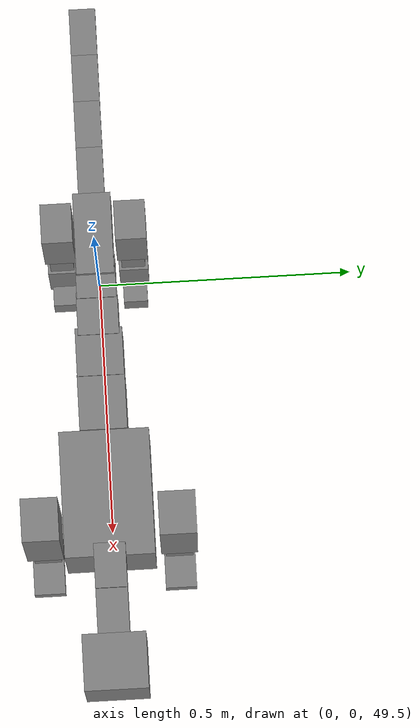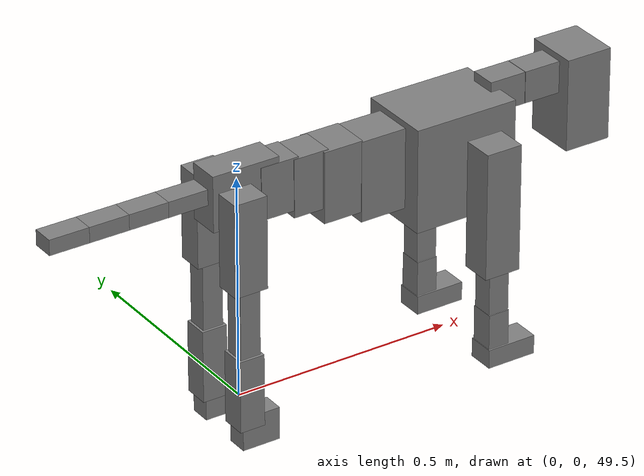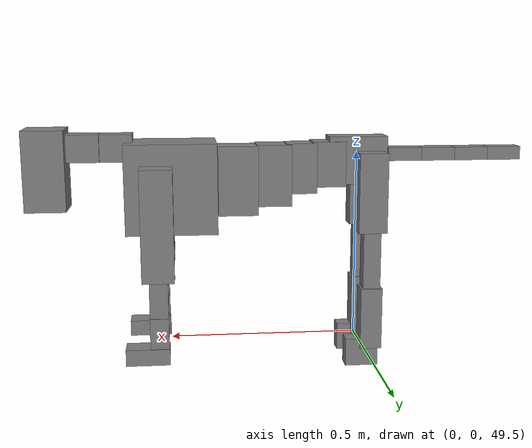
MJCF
<mujoco model="dog">

    <default>
        <joint armature="0.02" stiffness="1" damping="0.2" limited="true"/>
        <geom condim="3" friction="1 0.05 0.05" margin="0.01"/>
        <motor ctrllimited="true" ctrlrange="-1.0 1.0" forcelimited="true" gear="50"/>
    </default>

    <compiler inertiafromgeom="true" angle="radian"/>

    <option timestep="0.016" iterations="50" tolerance="1e-10" solver="Newton" jacobian="dense" cone="pyramidal"/>

    <size nconmax="20000" njmax="60000" nstack="5000000"/>
    <visual>
        <map force="0.1" zfar="30"/>
        <rgba haze="0.15 0.25 0.35 1"/>
        <quality shadowsize="2048"/>
        <global offwidth="800" offheight="800"/>
    </visual>

    <asset>
        <texture type="skybox" builtin="gradient" rgb1="0.3 0.5 0.7" rgb2="0 0 0" width="512" height="512"/>
        <texture name="texplane" type="2d" builtin="checker" rgb1=".2 .3 .4" rgb2=".1 0.15 0.2" width="512" height="512"
                 mark="cross" markrgb=".8 .8 .8"/>
        <texture name="texgeom" type="cube" builtin="flat" mark="cross" width="127" height="1278" rgb1="0.8 0.6 0.4"
                 rgb2="0.8 0.6 0.4" markrgb="1 1 1" random="0.01"/>

        <material name="matplane" reflectance="0.3" texture="texplane" texrepeat="1 1" texuniform="true"/>
        <material name="matgeom" texture="texgeom" texuniform="true" rgba="0.8 0.6 .4 1"/>
    </asset>

    <worldbody>
        <geom name="floor" pos="0 0 0" size="0 0 .25" type="plane" material="matplane" condim="3"/>

        <light directional="false" diffuse=".2 .2 .2" specular="0 0 0" pos="0 0 5" dir="0 0 -1" castshadow="false"/>
        <light mode="targetbodycom" target="torso" directional="false" diffuse=".8 .8 .8" specular="0.3 0.3 0.3"
               pos="0 0 4.0" dir="0 0 -1"/>

        <body name="root" pos="0 0 50">
            <freejoint name="root_1"/>
            <geom type="box" pos="0 0 -0.02" size="0.0774  0.0358  0.063" density="2030"/>

            <body name="spine1" pos="0.054 0 0">
                <joint name="spine1_y" axis="0 1 0" range="0 0.7" limited="true"/>
                <geom type="box" pos="0.02375 0 -0.03" size="0.04375  0.0375  0.05985" density="2030"/>

                <body name="spine2" pos="0.0612 0 0">
                    <joint name="spine2_y" axis="0 1 0" range="-0.15 0.15" limited="true"/>
                    <geom type="box" pos="0.03555  0  -0.04" size="0.04055  0.039  0.06615" density="2030"/>

                    <body name="spine3" pos="0.0730 0 0">
                        <joint name="spine3_y" axis="0 1 0" range="-0.15 0.15" limited="true"/>
                        <geom type="box" pos="0.03555  0  -0.057" size="0.04555  0.0445  0.081" density="2030"/>

                        <body name="spine4" pos="0.0780 0 0">
                            <joint name="spine4_y" axis="0 1 0" range="-0.15 0.15" limited="true"/>
                            <geom type="box" pos="0.05265  0  -0.07" size="0.05265  0.045  0.09135" density="2030"/>

                            <body name="torso" pos="0.1082 0 0">
                                <joint name="torso_y" axis="0 1 0" range="-0.15 0.15" limited="true"/>
                                <geom type="box" pos="0.11925  0  -0.085" size="0.11925  0.085  0.11745"
                                      density="2030"/>

                                <body name="neck1" pos="0.2160  0   0.0180">
                                    <joint name="neck1_y" axis="0 1 0" range="-1.2  -1" limited="true"/>
                                    <geom type="box" pos="0.0423  0  0" size="0.0423  0.03  0.036" density="2325"/>

                                    <body name="neck2" pos="0.0853  0  0">
                                        <joint name="neck2_y" axis="0 1 0" range="0.1  0" limited="true"/>
                                        <geom type="box" pos="0.0423  0  0" size="0.0423  0.03  0.036" density="2325"/>

                                        <body name="head" pos="0.0853  0  0">
                                            <joint name="head_y" axis="0 1 0" range="-0.3  -0.2" limited="true"/>
                                            <geom type="box" pos="0.0531  0  -0.055" size="0.0531  0.06  0.1044"
                                                  density="4030"/>

                                        </body>
                                    </body>
                                </body>

                                <body name="front_shoulder" pos="0.156  0   -0.0480">
                                    <joint name="front_shoulder_y" axis="0 1 0" range="-1 1.5" limited="true"/>
                                    <geom type="box" pos="0 0.13 -0.1175" size="0.0414  0.0354  0.1441" density="1158"/>
                                    <geom type="box" pos="0 -0.13 -0.1175" size="0.0414  0.0354  0.1441"
                                          density="1158"/>

                                    <body name="front_elbow" pos="0  0  -0.2350">
                                        <joint name="front_elbow_y" axis="0 1 0" range="-2 0" limited="true"/>
                                        <geom type="box" pos="0 0.13 -0.0668" size="0.0237  0.0242  0.0668"
                                              density="1081"/>
                                        <geom type="box" pos="0 -0.13 -0.0668" size="0.0237  0.0242  0.0668"
                                              density="1081"/>

                                        <body name="front_wrist" pos="0  0  -0.1337">
                                            <joint name="front_wrist_y" axis="0 1 0" range="-0.2 0" limited="true"/>
                                            <geom type="box" pos="0 0.13 -0.0407" size="0.0241  0.0268  0.0539"
                                                  density="1664"/>
                                            <geom type="box" pos="0 -0.13 -0.0407" size="0.0241  0.0268  0.0539"
                                                  density="1664"/>

                                            <body name="front_finger_end" pos="0  0  -0.0815">
                                                <joint name="front_finger_y" axis="0 1 0" range="-0.4 1"
                                                       limited="true"/>
                                                <geom type="box" pos="0.0307  0.13  -0.0063"
                                                      size="0.0563  0.0307  0.0213" density="1515"/>
                                                <geom type="box" pos="0.0307  -0.13  -0.0063"
                                                      size="0.0563  0.0307  0.0213" density="1515"/>

                                            </body>

                                        </body>
                                    </body>
                                </body>

                            </body>
                        </body>
                    </body>
                </body>
            </body>

            <body name="back_hip" pos="-0.03 0 -0.018">
                <joint name="back_hip_y" axis="0 1 0" range="-1.5 0.3" limited="true"/>
                <geom type="box" pos="0 0.07 -0.0822" size="0.0377  0.0296  0.1050" density="1154"/>
                <geom type="box" pos="0 -0.07 -0.0822" size="0.0377  0.0296  0.1050" density="1154"/>

                <body name="back_knee" pos="0  0  -0.1645">
                    <joint name="back_knee_y" axis="0 1 0" range="0 2.8" limited="true"/>
                    <geom type="box" pos="0 0.07 -0.0920" size="0.0233  0.0230  0.1075" density="1227"/>
                    <geom type="box" pos="0 -0.07 -0.0920" size="0.0233  0.0230  0.1075" density="1227"/>

                    <body name="back_ankle" pos="0  0  -0.1840">
                        <joint name="back_ankle_y" axis="0 1 0" range="-2.2 0" limited="true"/>
                        <geom type="box" pos="0 0.07 -0.0712" size="0.0287  0.0287  0.0824" density="1284"/>
                        <geom type="box" pos="0 -0.07 -0.0712" size="0.0287  0.0287  0.0824" density="1284"/>

                        <body name="back_toe_end" pos="0  0  -0.1423">
                            <joint name="back_toe_y" axis="0 1 0" range="-0.4 1" limited="true"/>
                            <geom type="box" pos="0.0237  0.07  -0.0220" size="0.0434  0.0237  0.0370" density="1515"/>
                            <geom type="box" pos="0.0237  -0.07  -0.0220" size="0.0434  0.0237  0.0370" density="1515"/>

                        </body>
                    </body>
                </body>
            </body>

            <body name="tail1" pos="-0.074 0 -0.006">
                <joint name="tail1_y" axis="0 1 0" range="-0.2 0.2" limited="true"/>
                <geom type="box" pos="-0.0536  0  0" size="0.045  0.025  0.0175" density="1587"/>

                <body name="tail2" pos="-0.09 0 0">
                    <joint name="tail2_y" axis="0 1 0" range="-0.2 0.2" limited="true"/>
                    <geom type="box" pos="-0.0536  0  0" size="0.045  0.025  0.0175" density="1587"/>

                    <body name="tail3" pos="-0.09 0 0">
                        <joint name="tail3_y" axis="0 1 0" range="-0.2 0.2" limited="true"/>
                        <geom type="box" pos="-0.0536  0  0" size="0.045  0.025  0.0175" density="1587"/>

                        <body name="tail4" pos="-0.09 0 0">
                            <joint name="tail4_y" axis="0 1 0" range="-0.2 0.2" limited="true"/>
                            <geom type="box" pos="-0.0536  0  0" size="0.045  0.025  0.0175" density="1587"/>

                        </body>
                    </body>
                </body>
            </body>
        </body>
    </worldbody>

    <actuator>
        <motor joint="spine1_y" forcerange="-150 150     "/>
        <motor joint="spine2_y" forcerange="-150 150     "/>
        <motor joint="spine3_y" forcerange="-150 150     "/>
        <motor joint="spine4_y" forcerange="-150 150     "/>
        <motor joint="torso_y" forcerange="-150 150     "/>
        <motor joint="neck1_y" forcerange="-100 100       "/>
        <motor joint="neck2_y" forcerange="-100 100       "/>
        <motor joint="head_y" forcerange="-150 150       "/>
        <motor joint="front_shoulder_y" forcerange="-180.74 155.05"/>
        <motor joint="front_elbow_y" forcerange="-107.48 168.42"/>
        <motor joint="front_wrist_y" forcerange="-115.36 98.78"/>
        <motor joint="front_finger_y" forcerange="-96.90 26.81"/>
        <motor joint="back_hip_y" forcerange="-243.28 350.95"/>
        <motor joint="back_knee_y" forcerange="-316.87 217.07"/>
        <motor joint="back_angle_y" forcerange="-177.73 181.34"/>
        <motor joint="back_toe_y" forcerange="-26.75 82.68"/>
        <motor joint="tail1_y" forcerange="-50 50     "/>
        <motor joint="tail2_y" forcerange="-50 50     "/>
        <motor joint="tail3_y" forcerange="-50 50     "/>
        <motor joint="tail4_y" forcerange="-50 50     "/>
    </actuator>
</mujoco>
